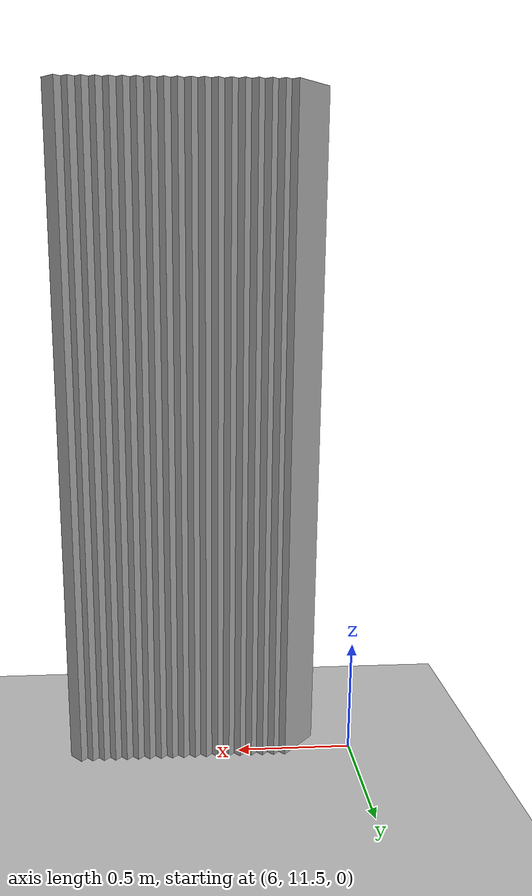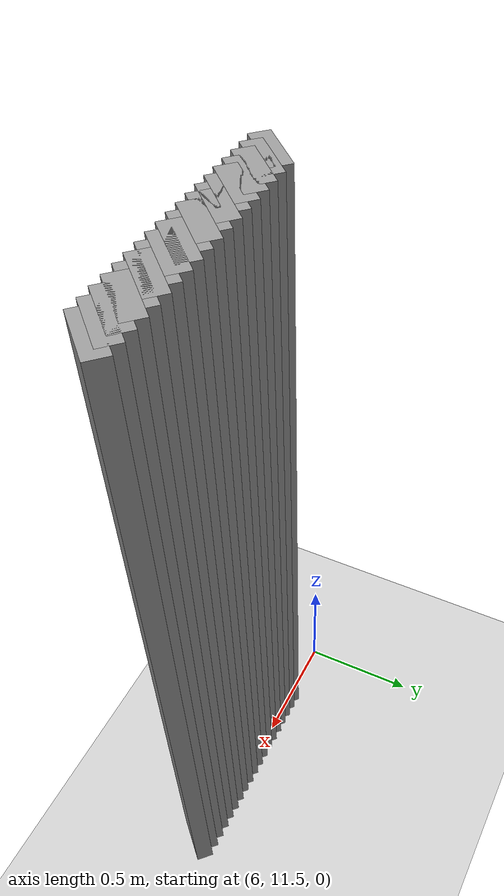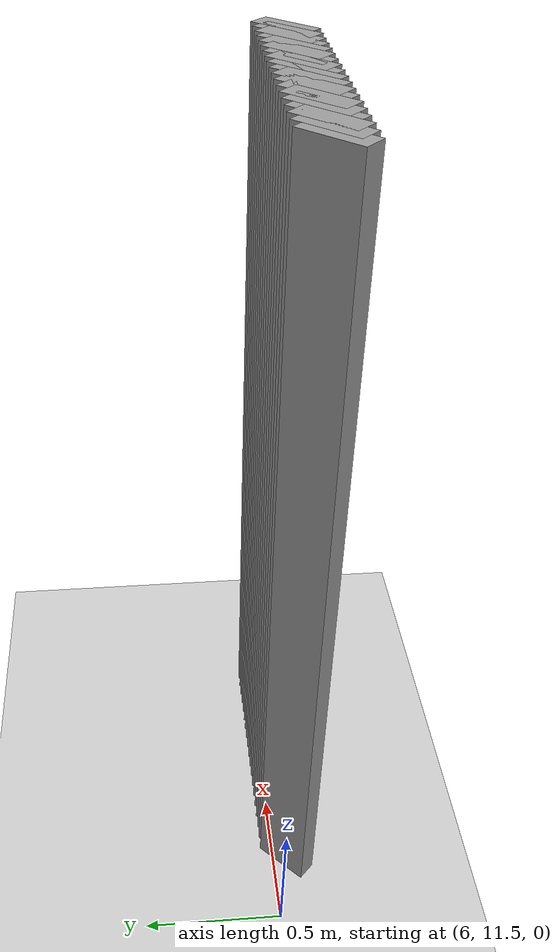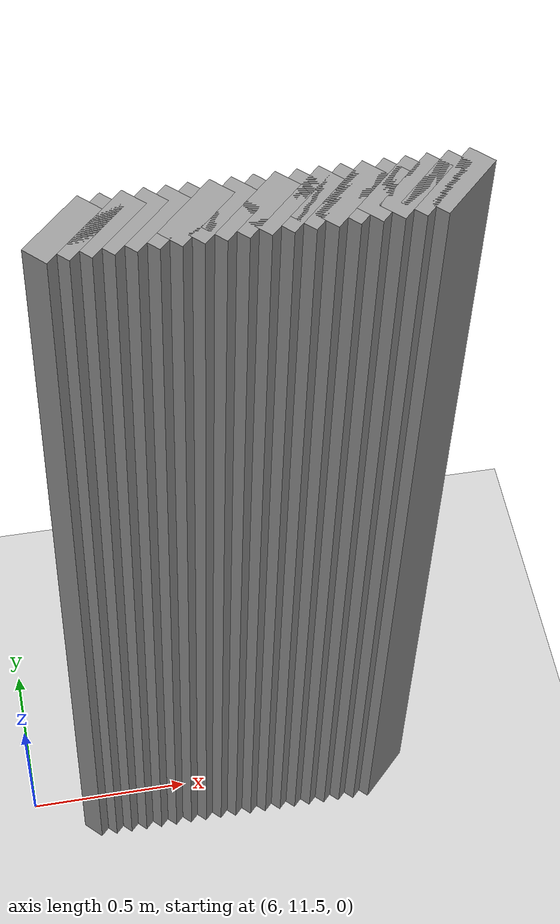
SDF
<sdf version="1.5">
 <world name="default">
  <include><uri>model://ground_plane</uri></include>
  <include><uri>model://sun</uri></include>
  <model name="grey_wall_2737">
   <static>1</static>
   <link name="link">
    <pose>6.25 11.45  1.4 0 0 -0.785398163397</pose>
    <collision name="collision"><geometry><box><size>0.0707106781187 .2  2.8</size></box></geometry></collision>
    <visual name="visual">
     <cast_shadows>0</cast_shadows>
     <geometry><box><size>0.0707106781187 .2  2.8</size></box></geometry>
     <material>
      <script>
       <uri>model://grey_wall/materials/scripts</uri>
       <uri>model://grey_wall/materials/textures</uri>
       <name>vrc/grey_wall</name>
      </script>
     </material>
    </visual>
   </link>
  </model>
  <model name="grey_wall_2738">
   <static>1</static>
   <link name="link">
    <pose>6.3 11.45  1.4 0 0 -0.785398163397</pose>
    <collision name="collision"><geometry><box><size>0.0707106781187 .2  2.8</size></box></geometry></collision>
    <visual name="visual">
     <cast_shadows>0</cast_shadows>
     <geometry><box><size>0.0707106781187 .2  2.8</size></box></geometry>
     <material>
      <script>
       <uri>model://grey_wall/materials/scripts</uri>
       <uri>model://grey_wall/materials/textures</uri>
       <name>vrc/grey_wall</name>
      </script>
     </material>
    </visual>
   </link>
  </model>
  <model name="grey_wall_2739">
   <static>1</static>
   <link name="link">
    <pose>6.35 11.45  1.4 0 0 -0.785398163397</pose>
    <collision name="collision"><geometry><box><size>0.0707106781187 .2  2.8</size></box></geometry></collision>
    <visual name="visual">
     <cast_shadows>0</cast_shadows>
     <geometry><box><size>0.0707106781187 .2  2.8</size></box></geometry>
     <material>
      <script>
       <uri>model://grey_wall/materials/scripts</uri>
       <uri>model://grey_wall/materials/textures</uri>
       <name>vrc/grey_wall</name>
      </script>
     </material>
    </visual>
   </link>
  </model>
  <model name="grey_wall_2740">
   <static>1</static>
   <link name="link">
    <pose>6.4 11.45  1.4 0 0 -0.785398163397</pose>
    <collision name="collision"><geometry><box><size>0.0707106781187 .2  2.8</size></box></geometry></collision>
    <visual name="visual">
     <cast_shadows>0</cast_shadows>
     <geometry><box><size>0.0707106781187 .2  2.8</size></box></geometry>
     <material>
      <script>
       <uri>model://grey_wall/materials/scripts</uri>
       <uri>model://grey_wall/materials/textures</uri>
       <name>vrc/grey_wall</name>
      </script>
     </material>
    </visual>
   </link>
  </model>
  <model name="grey_wall_2741">
   <static>1</static>
   <link name="link">
    <pose>6.45 11.45  1.4 0 0 -0.785398163397</pose>
    <collision name="collision"><geometry><box><size>0.0707106781187 .2  2.8</size></box></geometry></collision>
    <visual name="visual">
     <cast_shadows>0</cast_shadows>
     <geometry><box><size>0.0707106781187 .2  2.8</size></box></geometry>
     <material>
      <script>
       <uri>model://grey_wall/materials/scripts</uri>
       <uri>model://grey_wall/materials/textures</uri>
       <name>vrc/grey_wall</name>
      </script>
     </material>
    </visual>
   </link>
  </model>
  <model name="grey_wall_2742">
   <static>1</static>
   <link name="link">
    <pose>6.5 11.45  1.4 0 0 -0.785398163397</pose>
    <collision name="collision"><geometry><box><size>0.0707106781187 .2  2.8</size></box></geometry></collision>
    <visual name="visual">
     <cast_shadows>0</cast_shadows>
     <geometry><box><size>0.0707106781187 .2  2.8</size></box></geometry>
     <material>
      <script>
       <uri>model://grey_wall/materials/scripts</uri>
       <uri>model://grey_wall/materials/textures</uri>
       <name>vrc/grey_wall</name>
      </script>
     </material>
    </visual>
   </link>
  </model>
  <model name="grey_wall_2743">
   <static>1</static>
   <link name="link">
    <pose>6.55 11.45  1.4 0 0 -0.785398163397</pose>
    <collision name="collision"><geometry><box><size>0.0707106781187 .2  2.8</size></box></geometry></collision>
    <visual name="visual">
     <cast_shadows>0</cast_shadows>
     <geometry><box><size>0.0707106781187 .2  2.8</size></box></geometry>
     <material>
      <script>
       <uri>model://grey_wall/materials/scripts</uri>
       <uri>model://grey_wall/materials/textures</uri>
       <name>vrc/grey_wall</name>
      </script>
     </material>
    </visual>
   </link>
  </model>
  <model name="grey_wall_2744">
   <static>1</static>
   <link name="link">
    <pose>6.6 11.45  1.4 0 0 -0.785398163397</pose>
    <collision name="collision"><geometry><box><size>0.0707106781187 .2  2.8</size></box></geometry></collision>
    <visual name="visual">
     <cast_shadows>0</cast_shadows>
     <geometry><box><size>0.0707106781187 .2  2.8</size></box></geometry>
     <material>
      <script>
       <uri>model://grey_wall/materials/scripts</uri>
       <uri>model://grey_wall/materials/textures</uri>
       <name>vrc/grey_wall</name>
      </script>
     </material>
    </visual>
   </link>
  </model>
  <model name="grey_wall_2745">
   <static>1</static>
   <link name="link">
    <pose>6.65 11.45  1.4 0 0 -0.785398163397</pose>
    <collision name="collision"><geometry><box><size>0.0707106781187 .2  2.8</size></box></geometry></collision>
    <visual name="visual">
     <cast_shadows>0</cast_shadows>
     <geometry><box><size>0.0707106781187 .2  2.8</size></box></geometry>
     <material>
      <script>
       <uri>model://grey_wall/materials/scripts</uri>
       <uri>model://grey_wall/materials/textures</uri>
       <name>vrc/grey_wall</name>
      </script>
     </material>
    </visual>
   </link>
  </model>
  <model name="grey_wall_2746">
   <static>1</static>
   <link name="link">
    <pose>6.7 11.45  1.4 0 0 -0.785398163397</pose>
    <collision name="collision"><geometry><box><size>0.0707106781187 .2  2.8</size></box></geometry></collision>
    <visual name="visual">
     <cast_shadows>0</cast_shadows>
     <geometry><box><size>0.0707106781187 .2  2.8</size></box></geometry>
     <material>
      <script>
       <uri>model://grey_wall/materials/scripts</uri>
       <uri>model://grey_wall/materials/textures</uri>
       <name>vrc/grey_wall</name>
      </script>
     </material>
    </visual>
   </link>
  </model>
  <model name="grey_wall_2747">
   <static>1</static>
   <link name="link">
    <pose>6.75 11.45  1.4 0 0 -0.785398163397</pose>
    <collision name="collision"><geometry><box><size>0.0707106781187 .2  2.8</size></box></geometry></collision>
    <visual name="visual">
     <cast_shadows>0</cast_shadows>
     <geometry><box><size>0.0707106781187 .2  2.8</size></box></geometry>
     <material>
      <script>
       <uri>model://grey_wall/materials/scripts</uri>
       <uri>model://grey_wall/materials/textures</uri>
       <name>vrc/grey_wall</name>
      </script>
     </material>
    </visual>
   </link>
  </model>
  <model name="grey_wall_2748">
   <static>1</static>
   <link name="link">
    <pose>6.8 11.45  1.4 0 0 -0.785398163397</pose>
    <collision name="collision"><geometry><box><size>0.0707106781187 .2  2.8</size></box></geometry></collision>
    <visual name="visual">
     <cast_shadows>0</cast_shadows>
     <geometry><box><size>0.0707106781187 .2  2.8</size></box></geometry>
     <material>
      <script>
       <uri>model://grey_wall/materials/scripts</uri>
       <uri>model://grey_wall/materials/textures</uri>
       <name>vrc/grey_wall</name>
      </script>
     </material>
    </visual>
   </link>
  </model>
  <model name="grey_wall_2749">
   <static>1</static>
   <link name="link">
    <pose>6.85 11.45  1.4 0 0 -0.785398163397</pose>
    <collision name="collision"><geometry><box><size>0.0707106781187 .2  2.8</size></box></geometry></collision>
    <visual name="visual">
     <cast_shadows>0</cast_shadows>
     <geometry><box><size>0.0707106781187 .2  2.8</size></box></geometry>
     <material>
      <script>
       <uri>model://grey_wall/materials/scripts</uri>
       <uri>model://grey_wall/materials/textures</uri>
       <name>vrc/grey_wall</name>
      </script>
     </material>
    </visual>
   </link>
  </model>
  <model name="grey_wall_2750">
   <static>1</static>
   <link name="link">
    <pose>6.9 11.45  1.4 0 0 -0.785398163397</pose>
    <collision name="collision"><geometry><box><size>0.0707106781187 .2  2.8</size></box></geometry></collision>
    <visual name="visual">
     <cast_shadows>0</cast_shadows>
     <geometry><box><size>0.0707106781187 .2  2.8</size></box></geometry>
     <material>
      <script>
       <uri>model://grey_wall/materials/scripts</uri>
       <uri>model://grey_wall/materials/textures</uri>
       <name>vrc/grey_wall</name>
      </script>
     </material>
    </visual>
   </link>
  </model>
  <model name="grey_wall_2751">
   <static>1</static>
   <link name="link">
    <pose>6.95 11.45  1.4 0 0 -0.785398163397</pose>
    <collision name="collision"><geometry><box><size>0.0707106781187 .2  2.8</size></box></geometry></collision>
    <visual name="visual">
     <cast_shadows>0</cast_shadows>
     <geometry><box><size>0.0707106781187 .2  2.8</size></box></geometry>
     <material>
      <script>
       <uri>model://grey_wall/materials/scripts</uri>
       <uri>model://grey_wall/materials/textures</uri>
       <name>vrc/grey_wall</name>
      </script>
     </material>
    </visual>
   </link>
  </model>
  <model name="grey_wall_2752">
   <static>1</static>
   <link name="link">
    <pose>7.0 11.45  1.4 0 0 -0.785398163397</pose>
    <collision name="collision"><geometry><box><size>0.0707106781187 .2  2.8</size></box></geometry></collision>
    <visual name="visual">
     <cast_shadows>0</cast_shadows>
     <geometry><box><size>0.0707106781187 .2  2.8</size></box></geometry>
     <material>
      <script>
       <uri>model://grey_wall/materials/scripts</uri>
       <uri>model://grey_wall/materials/textures</uri>
       <name>vrc/grey_wall</name>
      </script>
     </material>
    </visual>
   </link>
  </model>
  <model name="grey_wall_2753">
   <static>1</static>
   <link name="link">
    <pose>7.05 11.45  1.4 0 0 -0.785398163397</pose>
    <collision name="collision"><geometry><box><size>0.0707106781187 .2  2.8</size></box></geometry></collision>
    <visual name="visual">
     <cast_shadows>0</cast_shadows>
     <geometry><box><size>0.0707106781187 .2  2.8</size></box></geometry>
     <material>
      <script>
       <uri>model://grey_wall/materials/scripts</uri>
       <uri>model://grey_wall/materials/textures</uri>
       <name>vrc/grey_wall</name>
      </script>
     </material>
    </visual>
   </link>
  </model>
  <model name="grey_wall_2754">
   <static>1</static>
   <link name="link">
    <pose>7.1 11.45  1.4 0 0 -0.785398163397</pose>
    <collision name="collision"><geometry><box><size>0.0707106781187 .2  2.8</size></box></geometry></collision>
    <visual name="visual">
     <cast_shadows>0</cast_shadows>
     <geometry><box><size>0.0707106781187 .2  2.8</size></box></geometry>
     <material>
      <script>
       <uri>model://grey_wall/materials/scripts</uri>
       <uri>model://grey_wall/materials/textures</uri>
       <name>vrc/grey_wall</name>
      </script>
     </material>
    </visual>
   </link>
  </model>
  <model name="grey_wall_2755">
   <static>1</static>
   <link name="link">
    <pose>7.15 11.45  1.4 0 0 -0.785398163397</pose>
    <collision name="collision"><geometry><box><size>0.0707106781187 .2  2.8</size></box></geometry></collision>
    <visual name="visual">
     <cast_shadows>0</cast_shadows>
     <geometry><box><size>0.0707106781187 .2  2.8</size></box></geometry>
     <material>
      <script>
       <uri>model://grey_wall/materials/scripts</uri>
       <uri>model://grey_wall/materials/textures</uri>
       <name>vrc/grey_wall</name>
      </script>
     </material>
    </visual>
   </link>
  </model>
 </world>
</sdf>
